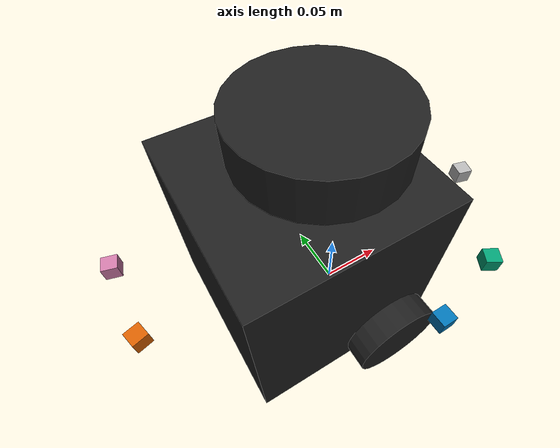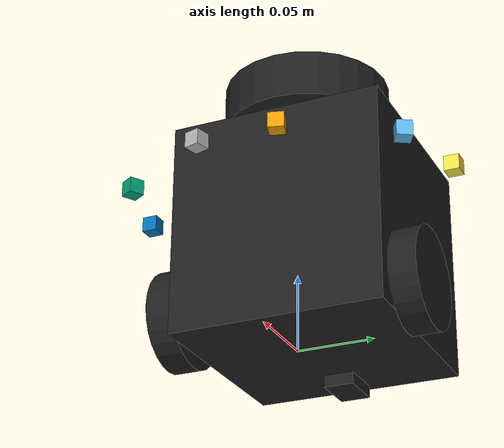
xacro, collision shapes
<?xml version="1.0" ?>
<robot name="turtlebot3_burger" xmlns:xacro="http://ros.org/wiki/xacro">
  <xacro:include filename="$(find turtlebot3_description)/urdf/common_properties.xacro"/>
  <xacro:include filename="$(find turtlebot3_description)/urdf/turtlebot3_burger.gazebo.xacro"/>

  <link name="base_footprint"/>

  <joint name="base_joint" type="fixed">
    <parent link="base_footprint"/>
    <child link="base_link"/>
    <origin xyz="0.0 0.0 0.010" rpy="0 0 0"/>
  </joint>

  <link name="base_link">
    <visual>
      <origin xyz="-0.032 0 0.0" rpy="0 0 0"/>
      <geometry>
        <mesh filename="package://turtlebot3_description/meshes/bases/burger_base.stl" scale="0.001 0.001 0.001"/>
      </geometry>
      <material name="light_black"/>
    </visual>

    <collision>
      <origin xyz="-0.032 0 0.070" rpy="0 0 0"/>
      <geometry>
        <box size="0.140 0.140 0.143"/>
      </geometry>
    </collision>

    <inertial>
      <origin xyz="0 0 0" rpy="0 0 0"/>
      <mass value="8.2573504e-01"/>
      <inertia ixx="2.2124416e-03" ixy="-1.2294101e-05" ixz="3.4938785e-05"
               iyy="2.1193702e-03" iyz="-5.0120904e-06"
               izz="2.0064271e-03" />
    </inertial>
  </link>

  <joint name="wheel_left_joint" type="continuous">
    <parent link="base_link"/>
    <child link="wheel_left_link"/>
    <origin xyz="0.0 0.08 0.023" rpy="-1.57 0 0"/>
    <axis xyz="0 0 1"/>
  </joint>

  <link name="wheel_left_link">
    <visual>
      <origin xyz="0 0 0" rpy="1.57 0 0"/>
      <geometry>
        <mesh filename="package://turtlebot3_description/meshes/wheels/left_tire.stl" scale="0.001 0.001 0.001"/>
      </geometry>
      <material name="dark"/>
    </visual>

    <collision>
      <origin xyz="0 0 0" rpy="0 0 0"/>
      <geometry>
        <cylinder length="0.018" radius="0.033"/>
      </geometry>
    </collision>

    <inertial>
      <origin xyz="0 0 0" />
      <mass value="2.8498940e-02" />
      <inertia ixx="1.1175580e-05" ixy="-4.2369783e-11" ixz="-5.9381719e-09"
               iyy="1.1192413e-05" iyz="-1.4400107e-11"
               izz="2.0712558e-05" />
      </inertial>
  </link>

  <joint name="wheel_right_joint" type="continuous">
    <parent link="base_link"/>
    <child link="wheel_right_link"/>
    <origin xyz="0.0 -0.080 0.023" rpy="-1.57 0 0"/>
    <axis xyz="0 0 1"/>
  </joint>

  <link name="wheel_right_link">
    <visual>
      <origin xyz="0 0 0" rpy="1.57 0 0"/>
      <geometry>
        <mesh filename="package://turtlebot3_description/meshes/wheels/right_tire.stl" scale="0.001 0.001 0.001"/>
      </geometry>
      <material name="dark"/>
    </visual>

    <collision>
      <origin xyz="0 0 0" rpy="0 0 0"/>
      <geometry>
        <cylinder length="0.018" radius="0.033"/>
      </geometry>
    </collision>

    <inertial>
      <origin xyz="0 0 0" />
      <mass value="2.8498940e-02" />
      <inertia ixx="1.1175580e-05" ixy="-4.2369783e-11" ixz="-5.9381719e-09"
               iyy="1.1192413e-05" iyz="-1.4400107e-11"
               izz="2.0712558e-05" />
      </inertial>
  </link>

  <joint name="caster_back_joint" type="fixed">
    <parent link="base_link"/>
    <child link="caster_back_link"/>
    <origin xyz="-0.081 0 -0.004" rpy="-1.57 0 0"/>
  </joint>

  <link name="caster_back_link">
    <collision>
      <origin xyz="0 0.001 0" rpy="0 0 0"/>
      <geometry>
        <box size="0.030 0.009 0.020"/>
      </geometry>
    </collision>

    <inertial>
      <origin xyz="0 0 0" />
      <mass value="0.005" />
      <inertia ixx="0.001" ixy="0.0" ixz="0.0"
               iyy="0.001" iyz="0.0"
               izz="0.001" />
    </inertial>
  </link>

  <joint name="imu_joint" type="fixed">
    <parent link="base_link"/>
    <child link="imu_link"/>
    <origin xyz="-0.032 0 0.068" rpy="0 0 0"/>
  </joint>

  <link name="imu_link"/>

  <joint name="scan_joint" type="fixed">
    <parent link="base_link"/>
    <child link="base_scan"/>
    <origin xyz="-0.032 0 0.172" rpy="0 0 0"/>
  </joint>

  <link name="base_scan">
    <visual>
      <origin xyz="0 0 0.0" rpy="0 0 0"/>
      <geometry>
        <mesh filename="package://turtlebot3_description/meshes/sensors/lds.stl" scale="0.001 0.001 0.001"/>
      </geometry>
      <material name="dark"/>
    </visual>

    <collision>
      <origin xyz="0.015 0 -0.0065" rpy="0 0 0"/>
      <geometry>
        <cylinder length="0.0315" radius="0.055"/>
      </geometry>
    </collision>

    <inertial>
      <mass value="0.114" />
      <origin xyz="0 0 0" />
      <inertia ixx="0.001" ixy="0.0" ixz="0.0"
               iyy="0.001" iyz="0.0"
               izz="0.001" />
    </inertial>
  </link>
  <joint name="ir_1_joint" type="fixed">
    <axis xyz="0 1 0" />
    <origin rpy="0 0 -0.2627" xyz="0.09093 -0.02625 0.096" />
    <parent link="base_link"/>
    <child link="ir_1"/>
 </joint>
 <link name="ir_1">
    <collision>
      <origin xyz="0 0 0" rpy="0 0 0"/>
      <geometry>
        <box size="0.01 0.01 0.01"/>
      </geometry>
    </collision>
    <visual>
      <origin xyz="0 0 0" rpy="0 0 0"/>
      <geometry>
        <box size="0.01 0.01 0.01"/>
      </geometry>
    </visual>
    <inertial>
      <mass value="1e-5" />
      <origin xyz="0 0 0" rpy="0 0 0"/>
      <inertia ixx="1e-6" ixy="0" ixz="0" iyy="1e-6" iyz="0"      izz="1e-6" />
    </inertial>
 </link>
 <joint name="ir_2_joint" type="fixed">
   <axis xyz="0 1 0" />
   <origin rpy="0 0 0.2627" xyz=" 0.09093 0.02625 0.096" />
   <parent link="base_link"/>
   <child link="ir_2"/>
</joint>
 <link name="ir_2">
   <collision>
     <origin xyz="0 0 0" rpy="0 0 0"/>
     <geometry>
       <box size="0.01 0.01 0.01"/>
     </geometry>
   </collision>
   <visual>
     <origin xyz="0 0 0" rpy="0 0 0"/>
     <geometry>
       <box size="0.01 0.01 0.01"/>
     </geometry>
   </visual>
   <inertial>
     <mass value="1e-5" />
     <origin xyz="0 0 0" rpy="0 0 0"/>
     <inertia ixx="1e-6" ixy="0" ixz="0" iyy="1e-6" iyz="0"      izz="1e-6" />
   </inertial>
</link>
<joint name="ir_3_joint" type="fixed">
  <axis xyz="0 1 0" />
  <origin rpy="0 0 0.5236" xyz="0.0525 0.09093  0.096" />
  <parent link="base_link"/>
  <child link="ir_3"/>
</joint>
<link name="ir_3">
  <collision>
    <origin xyz="0 0 0" rpy="0 0 0"/>
    <geometry>
      <box size="0.01 0.01 0.01"/>
    </geometry>
  </collision>
  <visual>
    <origin xyz="0 0 0" rpy="0 0 0"/>
    <geometry>
      <box size="0.01 0.01 0.01"/>
    </geometry>
  </visual>
  <inertial>
    <mass value="1e-5" />
    <origin xyz="0 0 0" rpy="0 0 0"/>
    <inertia ixx="1e-6" ixy="0" ixz="0" iyy="1e-6" iyz="0"      izz="1e-6" />
  </inertial>
</link>
<joint name="ir_4_joint" type="fixed">
  <axis xyz="0 1 0" />
  <origin rpy="0 0 -0.5236" xyz="0.0525 -0.09093  0.096" />
  <parent link="base_link"/>
  <child link="ir_4"/>
</joint>
<link name="ir_4">
  <collision>
    <origin xyz="0 0 0" rpy="0 0 0"/>
    <geometry>
      <box size="0.01 0.01 0.01"/>
    </geometry>
  </collision>
  <visual>
    <origin xyz="0 0 0" rpy="0 0 0"/>
    <geometry>
      <box size="0.01 0.01 0.01"/>
    </geometry>
  </visual>
  <inertial>
    <mass value="1e-5" />
    <origin xyz="0 0 0" rpy="0 0 0"/>
    <inertia ixx="1e-6" ixy="0" ixz="0" iyy="1e-6" iyz="0"      izz="1e-6" />
  </inertial>
</link>
<joint name="ir_5_joint" type="fixed">
  <axis xyz="0 1 0" />
  <origin rpy="0 0 1.5708" xyz="0.0 0.105 0.096" />
  <parent link="base_link"/>
  <child link="ir_5"/>
</joint>
<link name="ir_5">
  <collision>
    <origin xyz="0 0 0" rpy="0 0 0"/>
    <geometry>
      <box size="0.01 0.01 0.01"/>
    </geometry>
  </collision>
  <visual>
    <origin xyz="0 0 0" rpy="0 0 0"/>
    <geometry>
      <box size="0.01 0.01 0.01"/>
    </geometry>
  </visual>
  <inertial>
    <mass value="1e-5" />
    <origin xyz="0 0 0" rpy="0 0 0"/>
    <inertia ixx="1e-6" ixy="0" ixz="0" iyy="1e-6" iyz="0"      izz="1e-6" />
  </inertial>
</link>
<joint name="ir_6_joint" type="fixed">
  <axis xyz="0 1 0" />
  <origin rpy="0 0 -1.5708" xyz="0.0 -0.105 0.096" />
  <parent link="base_link"/>
  <child link="ir_6"/>
</joint>
<link name="ir_6">
  <collision>
    <origin xyz="0 0 0" rpy="0 0 0"/>
    <geometry>
      <box size="0.01 0.01 0.01"/>
    </geometry>
  </collision>
  <visual>
    <origin xyz="0 0 0" rpy="0 0 0"/>
    <geometry>
      <box size="0.01 0.01 0.01"/>
    </geometry>
  </visual>
  <inertial>
    <mass value="1e-5" />
    <origin xyz="0 0 0" rpy="0 0 0"/>
    <inertia ixx="1e-6" ixy="0" ixz="0" iyy="1e-6" iyz="0"      izz="1e-6" />
  </inertial>
</link>
<joint name="ir_7_joint" type="fixed">
  <axis xyz="0 1 0" />
  <origin rpy="0 0 -2.879" xyz="-0.15 -0.02625 0.096" />
  <parent link="base_link"/>
  <child link="ir_7"/>
</joint>
<link name="ir_7">
  <collision>
    <origin xyz="0 0 0" rpy="0 0 0"/>
    <geometry>
      <box size="0.01 0.01 0.01"/>
    </geometry>
  </collision>
  <visual>
    <origin xyz="0 0 0" rpy="0 0 0"/>
    <geometry>
      <box size="0.01 0.01 0.01"/>
    </geometry>
  </visual>
  <inertial>
    <mass value="1e-5" />
    <origin xyz="0 0 0" rpy="0 0 0"/>
    <inertia ixx="1e-6" ixy="0" ixz="0" iyy="1e-6" iyz="0"      izz="1e-6" />
  </inertial>
</link>
<joint name="ir_8_joint" type="fixed">
  <axis xyz="0 1 0" />
  <origin rpy="0 0 2.879" xyz="-0.15 0.02625 0.096" />
  <parent link="base_link"/>
  <child link="ir_8"/>
</joint>
<link name="ir_8">
  <collision>
    <origin xyz="0 0 0" rpy="0 0 0"/>
    <geometry>
      <box size="0.01 0.01 0.01"/>
    </geometry>
  </collision>
  <visual>
    <origin xyz="0 0 0" rpy="0 0 0"/>
    <geometry>
      <box size="0.01 0.01 0.01"/>
    </geometry>
  </visual>
  <inertial>
    <mass value="1e-5" />
    <origin xyz="0 0 0" rpy="0 0 0"/>
    <inertia ixx="1e-6" ixy="0" ixz="0" iyy="1e-6" iyz="0"      izz="1e-6" />
  </inertial>
</link>

</robot>
